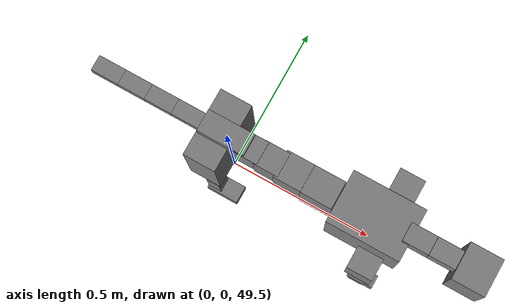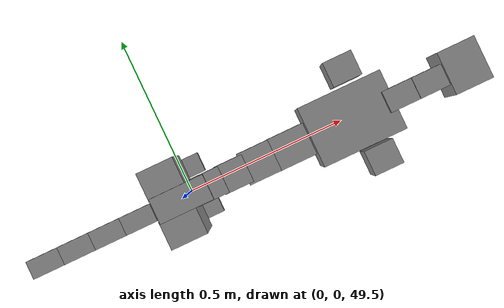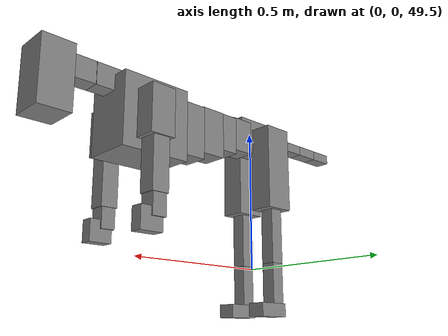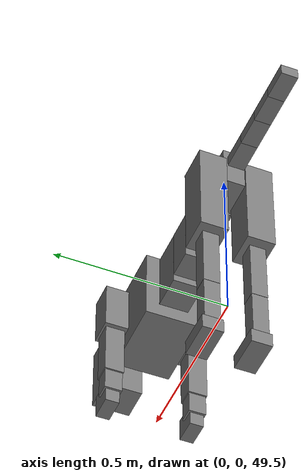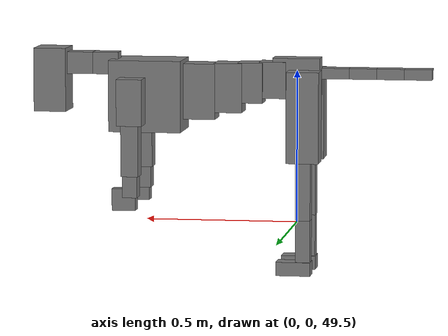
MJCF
<mujoco model="dog">

    <default>
        <joint armature="0.02" stiffness="1" damping="0.2" limited="true"/>
        <geom condim="3" friction="1 0.05 0.05" margin="0.01"/>
        <motor ctrllimited="true" ctrlrange="-1.0 1.0" forcelimited="true" gear="50"/>
    </default>

    <compiler inertiafromgeom="true" angle="radian"/>

    <option timestep="0.016" iterations="50" tolerance="1e-10" solver="Newton" jacobian="dense" cone="pyramidal"/>

    <size nconmax="20000" njmax="60000" nstack="5000000"/>
    <visual>
        <map force="0.1" zfar="30"/>
        <rgba haze="0.15 0.25 0.35 1"/>
        <quality shadowsize="2048"/>
        <global offwidth="800" offheight="800"/>
    </visual>

    <asset>
        <texture type="skybox" builtin="gradient" rgb1="0.3 0.5 0.7" rgb2="0 0 0" width="512" height="512"/>
        <texture name="texplane" type="2d" builtin="checker" rgb1=".2 .3 .4" rgb2=".1 0.15 0.2" width="512" height="512"
                 mark="cross" markrgb=".8 .8 .8"/>
        <texture name="texgeom" type="cube" builtin="flat" mark="cross" width="127" height="1278" rgb1="0.8 0.6 0.4"
                 rgb2="0.8 0.6 0.4" markrgb="1 1 1" random="0.01"/>

        <material name="matplane" reflectance="0.3" texture="texplane" texrepeat="1 1" texuniform="true"/>
        <material name="matgeom" texture="texgeom" texuniform="true" rgba="0.8 0.6 .4 1"/>
    </asset>

    <worldbody>
        <geom name="floor" pos="0 0 0" size="0 0 .25" type="plane" material="matplane" condim="3"/>

        <light directional="false" diffuse=".2 .2 .2" specular="0 0 0" pos="0 0 5" dir="0 0 -1" castshadow="false"/>
        <light mode="targetbodycom" target="torso" directional="false" diffuse=".8 .8 .8" specular="0.3 0.3 0.3"
               pos="0 0 4.0" dir="0 0 -1"/>

        <body name="root" pos="0 0 50">
            <freejoint name="root_1"/>
            <geom type="box" pos="0 0 -0.02" size="0.0774  0.0358  0.063" density="2030"/>

            <body name="spine1" pos="0.054 0 0">
                <joint name="spine1_y" axis="0 1 0" range="0 0.7" limited="true"/>
                <geom type="box" pos="0.02375 0 -0.03" size="0.04375  0.0375  0.05985" density="2030"/>

                <body name="spine2" pos="0.0612 0 0">
                    <joint name="spine2_y" axis="0 1 0" range="-0.15 0.15" limited="true"/>
                    <geom type="box" pos="0.03555  0  -0.04" size="0.04055  0.039  0.06615" density="2030"/>

                    <body name="spine3" pos="0.0730 0 0">
                        <joint name="spine3_y" axis="0 1 0" range="-0.15 0.15" limited="true"/>
                        <geom type="box" pos="0.03555  0  -0.057" size="0.04555  0.0445  0.081" density="2030"/>

                        <body name="spine4" pos="0.0780 0 0">
                            <joint name="spine4_y" axis="0 1 0" range="-0.15 0.15" limited="true"/>
                            <geom type="box" pos="0.05265  0  -0.07" size="0.05265  0.045  0.09135" density="2030"/>

                            <body name="torso" pos="0.1082 0 0">
                                <joint name="torso_y" axis="0 1 0" range="-0.15 0.15" limited="true"/>
                                <geom type="box" pos="0.11925  0  -0.085" size="0.11925  0.085  0.11745"
                                      density="2030"/>

                                <body name="neck1" pos="0.2160  0   0.0180">
                                    <joint name="neck1_y" axis="0 1 0" range="-1.2  -1" limited="true"/>
                                    <geom type="box" pos="0.0423  0  0" size="0.0423  0.03  0.036" density="2325"/>

                                    <body name="neck2" pos="0.0853  0  0">
                                        <joint name="neck2_y" axis="0 1 0" range="0.1  0" limited="true"/>
                                        <geom type="box" pos="0.0423  0  0" size="0.0423  0.03  0.036" density="2325"/>

                                        <body name="head" pos="0.0853  0  0">
                                            <joint name="head_y" axis="0 1 0" range="-0.3  -0.2" limited="true"/>
                                            <geom type="box" pos="0.0531  0  -0.055" size="0.0531  0.06  0.1044"
                                                  density="4030"/>

                                        </body>
                                    </body>
                                </body>

                                <body name="front_shoulder" pos="0.156  0   -0.0480">
                                    <joint name="front_shoulder_y" axis="0 1 0" range="-1 1.5" limited="true"/>
                                    <geom type="box" pos="0 0.13 -0.0496" size="0.0418  0.0357  0.0762" density="1158"/>
                                    <geom type="box" pos="0 -0.13 -0.0496" size="0.0418  0.0357  0.0762"
                                          density="1158"/>

                                    <body name="front_elbow" pos="0  0  -0.0991">
                                        <joint name="front_elbow_y" axis="0 1 0" range="-2 0" limited="true"/>
                                        <geom type="box" pos="0 0.13 -0.0965" size="0.0286  0.0292  0.0965"
                                              density="1081"/>
                                        <geom type="box" pos="0 -0.13 -0.0965" size="0.0286  0.0292  0.0965"
                                              density="1081"/>

                                        <body name="front_wrist" pos="0  0  -0.1929">
                                            <joint name="front_wrist_y" axis="0 1 0" range="-0.2 0" limited="true"/>
                                            <geom type="box" pos="0 0.13 -0.0280" size="0.0239  0.0266  0.0412"
                                                  density="1664"/>
                                            <geom type="box" pos="0 -0.13 -0.0280" size="0.0239  0.0266  0.0412"
                                                  density="1664"/>

                                            <body name="front_finger_end" pos="0  0  -0.0560">
                                                <joint name="front_finger_y" axis="0 1 0" range="-0.4 1"
                                                       limited="true"/>
                                                <geom type="box" pos="0.0210  0.13  -0.0208"
                                                      size="0.0385  0.0210  0.0358" density="1515"/>
                                                <geom type="box" pos="0.0210  -0.13  -0.0208"
                                                      size="0.0385  0.0210  0.0358" density="1515"/>

                                            </body>

                                        </body>
                                    </body>
                                </body>

                            </body>
                        </body>
                    </body>
                </body>
            </body>

            <body name="back_hip" pos="-0.03 0 -0.018">
                <joint name="back_hip_y" axis="0 1 0" range="-1.5 0.3" limited="true"/>
                <geom type="box" pos="0 0.07 -0.1262" size="0.0529  0.0415  0.1490" density="1154"/>
                <geom type="box" pos="0 -0.07 -0.1262" size="0.0529  0.0415  0.1490" density="1154"/>

                <body name="back_knee" pos="0  0  -0.2523">
                    <joint name="back_knee_y" axis="0 1 0" range="0 2.8" limited="true"/>
                    <geom type="box" pos="0 0.07 -0.0981" size="0.0243  0.0240  0.1137" density="1227"/>
                    <geom type="box" pos="0 -0.07 -0.0981" size="0.0243  0.0240  0.1137" density="1227"/>

                    <body name="back_ankle" pos="0  0  -0.1962">
                        <joint name="back_ankle_y" axis="0 1 0" range="-2.2 0" limited="true"/>
                        <geom type="box" pos="0 0.07 -0.0838" size="0.0236  0.0236  0.0950" density="1284"/>
                        <geom type="box" pos="0 -0.07 -0.0838" size="0.0236  0.0236  0.0950" density="1284"/>

                        <body name="back_toe_end" pos="0  0  -0.1676">
                            <joint name="back_toe_y" axis="0 1 0" range="-0.4 1" limited="true"/>
                            <geom type="box" pos="0.0308  0.07  -0.0074" size="0.0565  0.0308  0.0224" density="1515"/>
                            <geom type="box" pos="0.0308  -0.07  -0.0074" size="0.0565  0.0308  0.0224" density="1515"/>

                        </body>
                    </body>
                </body>
            </body>

            <body name="tail1" pos="-0.074 0 -0.006">
                <joint name="tail1_y" axis="0 1 0" range="-0.2 0.2" limited="true"/>
                <geom type="box" pos="-0.0536  0  0" size="0.045  0.025  0.0175" density="1587"/>

                <body name="tail2" pos="-0.09 0 0">
                    <joint name="tail2_y" axis="0 1 0" range="-0.2 0.2" limited="true"/>
                    <geom type="box" pos="-0.0536  0  0" size="0.045  0.025  0.0175" density="1587"/>

                    <body name="tail3" pos="-0.09 0 0">
                        <joint name="tail3_y" axis="0 1 0" range="-0.2 0.2" limited="true"/>
                        <geom type="box" pos="-0.0536  0  0" size="0.045  0.025  0.0175" density="1587"/>

                        <body name="tail4" pos="-0.09 0 0">
                            <joint name="tail4_y" axis="0 1 0" range="-0.2 0.2" limited="true"/>
                            <geom type="box" pos="-0.0536  0  0" size="0.045  0.025  0.0175" density="1587"/>

                        </body>
                    </body>
                </body>
            </body>
        </body>
    </worldbody>

    <actuator>
        <motor joint="spine1_y" forcerange="-150 150     "/>
        <motor joint="spine2_y" forcerange="-150 150     "/>
        <motor joint="spine3_y" forcerange="-150 150     "/>
        <motor joint="spine4_y" forcerange="-150 150     "/>
        <motor joint="torso_y" forcerange="-150 150     "/>
        <motor joint="neck1_y" forcerange="-100 100       "/>
        <motor joint="neck2_y" forcerange="-100 100       "/>
        <motor joint="head_y" forcerange="-150 150       "/>
        <motor joint="front_shoulder_y" forcerange="-139.45 198.69"/>
        <motor joint="front_elbow_y" forcerange="-146.45 166.16"/>
        <motor joint="front_wrist_y" forcerange="-149.67 63.14"/>
        <motor joint="front_finger_y" forcerange="-41.35 30.66"/>
        <motor joint="back_hip_y" forcerange="-373.04 380.57"/>
        <motor joint="back_knee_y" forcerange="-253.97 294.69"/>
        <motor joint="back_angle_y" forcerange="-183.63 94.52"/>
        <motor joint="back_toe_y" forcerange="-126.58 40.01"/>
        <motor joint="tail1_y" forcerange="-50 50     "/>
        <motor joint="tail2_y" forcerange="-50 50     "/>
        <motor joint="tail3_y" forcerange="-50 50     "/>
        <motor joint="tail4_y" forcerange="-50 50     "/>
    </actuator>
</mujoco>
